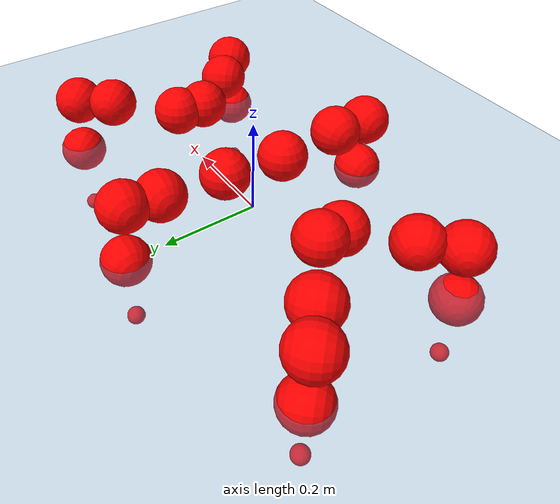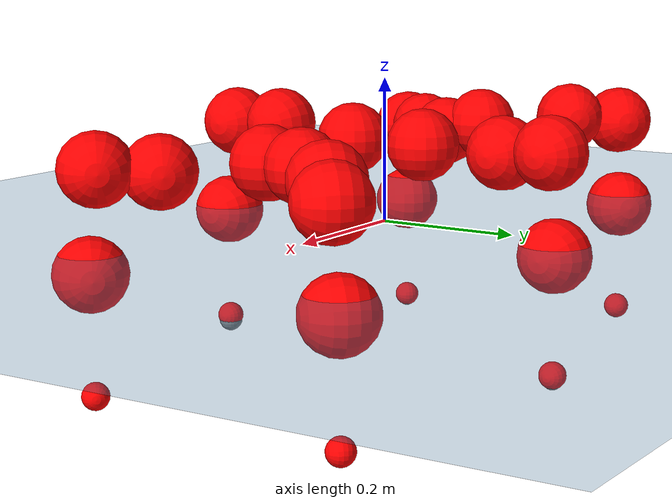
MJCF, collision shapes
<mujoco model="Golem">
  <compiler angle="radian" assetdir="assets" balanceinertia="true" inertiafromgeom="false"/>

  <option timestep="0.005" density="1.2" viscosity="2e-05"/>

  <size nkey="1"/>

  <visual>
    <quality shadowsize="8192"/>
    <map shadowclip="0.5"/>
  </visual>

  <default>
    <default class="/">
      <joint armature="0.01" damping="0.01" frictionloss="0.01"/>
      <geom contype="0" conaffinity="0" group="1" solref="-1000 -80"/>
      <site size="0.01 0.005 0.005" group="5"/>
      <general forcelimited="true" biastype="affine" gainprm="25" biasprm="0 -25 -0.5"/>
      <default class="visual">
        <geom type="mesh" group="2"/>
      </default>
      <default class="collision">
        <geom group="3"/>
      </default>
      <default class="foot">
        <geom size="0.01 0 0" condim="6" group="4" priority="1" solimp="0.015 1 0.01"/>
      </default>
      <default class="reward_collision_sphere">
        <geom group="5" rgba="1 0 0 1"/>
      </default>
    </default>
  </default>

  <asset>
    <texture type="skybox" colorspace="auto" name="//unnamed_texture_0" builtin="gradient" rgb1="0.95 0.95 0.95" rgb2="0.95 0.95 0.95" width="100" height="600"/>
    <texture type="2d" colorspace="auto" name="texplane" builtin="checker" rgb1="0.345 0.575 0.748" rgb2="0.345 0.575 0.748" markrgb="1 1 1" width="512" height="512"/>
    <material name="MatPlane" class="/" texture="texplane" texuniform="true" texrepeat="2 2" specular="0.9"/>
    <mesh name="body" class="/" file="body.stl" scale="0.001 0.001 0.001"/>
    <mesh name="coxa" class="/" file="coxa.stl" scale="0.001 0.001 0.001"/>
    <mesh name="femur" class="/" file="femur.stl" scale="0.001 0.001 0.001"/>
    <mesh name="tibia" class="/" file="tibia.stl" scale="0.001 0.001 0.001"/>
    <mesh name="tarsus" class="/" file="tarsus.stl" scale="0.001 0.001 0.001"/>
  </asset>

  <worldbody>
    <geom name="floor" class="/" size="100 100 0.125" type="plane" group="0" material="MatPlane"/>
    <light name="toplight_shadow" class="/" pos="0 0 5" dir="0.0990148 0.0990148 -0.990148" type="directional" ambient="0.04 0.04 0.04" diffuse="0.55 0.55 0.55" specular="0.12 0.12 0.12"/>
    <light name="toplight_fill" class="/" pos="0 0 5" dir="0.0990148 0.0990148 -0.990148" type="directional" castshadow="false" ambient="0.04 0.04 0.04" diffuse="0.3 0.3 0.3" specular="0.08 0.08 0.08"/>
    <body name="trunk" pos="-0.000886742 0.000321509 0.0107144" quat="0.999997 0.000843133 0.00208311 -0.00101181">
      <inertial pos="0.00102917 -0.0086127 0.00887279" quat="0.999775 0.0204 -0.00550761 0.00200502" mass="6.27032" diaginertia="0.0665747 0.00217206 0.0618368"/>
      <joint name="//unnamed_joint_0" type="free"/>
      <geom name="//unnamed_geom_1" class="/" pos="0 0 0.09514" quat="1 0 0 0" type="mesh" rgba="0.9 0.9 0.9 1" mesh="body"/>
      <site name="imu" class="/" pos="0.218301 -0.000297642 0.101904" size="0.0124428"/>
      <camera name="track" class="/" pos="0 -1.49146 0" quat="0.707107 0.707107 0 0" mode="trackcom"/>
      <camera name="ego_camera" class="/" pos="0.19507 0 0.148656" quat="-0.5 -0.5 0.5 0.5"/>
      <body name="coxa_RR" pos="-0.256691 -0.0654077 0.0893833" quat="0.388204 -0.000679599 0.0015712 -0.921572">
        <inertial pos="0.0118971 0.00651778 0.000507284" quat="0.998868 -0.0437975 -0.0171711 0.00705391" mass="0.358172" diaginertia="0.0757363 0.00227331 0.081951"/>
        <joint name="coxa_joint_RR" class="/" pos="0 0 0" axis="0.000866936 0.000703829 -0.999999" stiffness="0.00346801" range="-3.04071 3.12076" armature="0.0140344" damping="0" frictionloss="0.00649366"/>
        <geom name="//unnamed_geom_2" class="/" type="mesh" rgba="0.2 0.2 0.2 1" mesh="coxa"/>
        <geom name="//unnamed_geom_3" class="reward_collision_sphere" size="0.049771" pos="-0.0450161 0 0"/>
        <body name="femur_RR" pos="0.0853803 -0.000828394 -0.00723835" quat="0.499946 -0.499972 0.500289 0.499793">
          <inertial pos="-0.00107098 0.00400697 -0.0105914" quat="1 -0.00069734 -0.000151418 0.000118948" mass="0.393191" diaginertia="0.0785305 0.00233968 0.0840526"/>
          <joint name="femur_joint_RR" class="/" pos="0 0 0" axis="0.0408792 0.0249926 -0.998851" stiffness="0.00918664" range="-3.19099 3.10724" armature="0.0154182" damping="0.0298493" frictionloss="0.0142335"/>
          <geom name="//unnamed_geom_4" class="/" type="mesh" rgba="0.9 0.9 0.9 1" mesh="femur"/>
          <geom name="//unnamed_geom_5" class="reward_collision_sphere" size="0.049771"/>
          <body name="tibia_RR" pos="0.00543869 -0.0813019 0.00664867" quat="-6.25927e-05 1 1.32593e-05 3.63454e-05">
            <inertial pos="0.00468327 -0.00969571 0.0106737" quat="0.998817 0.00619254 0.0481062 -0.00339858" mass="0.407191" diaginertia="0.0904245 0.00250344 0.0763141"/>
            <joint name="tibia_joint_RR" class="/" pos="0 0 0" axis="9.95734e-05 -0.000173549 1" stiffness="0.00400138" range="-3.13715 3.29317" armature="0.0115931" damping="0" frictionloss="0.0123705"/>
            <geom name="//unnamed_geom_6" class="/" type="mesh" rgba="0.2 0.2 0.2 1" mesh="tibia"/>
            <geom name="//unnamed_geom_7" class="reward_collision_sphere" size="0.049771"/>
            <body name="tarsus_RR" pos="0.128333 0.0101326 1.52899e-05" quat="0.999987 0.00100399 0.000915746 0.00490294">
              <inertial pos="0.0867794 0.0116167 -0.00388881" quat="0.496941 0.505056 0.497352 0.500608" mass="0.402942" diaginertia="0.0749841 0.00189374 0.0682125"/>
              <joint name="tarsus_joint_RR" class="/" pos="0 0 0" axis="0.00781228 -0.0114806 0.999904" stiffness="0.0139135" range="-3.12687 3.12796" armature="0.0137934" damping="0.044002" frictionloss="0.0128404"/>
              <geom name="//unnamed_geom_8" class="/" type="mesh" rgba="0.9 0.9 0.9 1" mesh="tarsus"/>
              <geom name="foot_1" class="foot" size="0.0127677" pos="0.16806 0 0" quat="0 -0.707107 0 0.707107"/>
              <geom name="//unnamed_geom_10" class="reward_collision_sphere" size="0.049771"/>
              <geom name="//unnamed_geom_11" class="reward_collision_sphere" size="0.0186641" pos="0.161308 0 0"/>
              <site name="foot_1" class="foot" pos="0.16806 0 0" quat="0 -0.707107 0 0.707107" size="0.0124428"/>
            </body>
          </body>
        </body>
      </body>
      <body name="coxa_RM" pos="-0.011684 -0.106007 0.100893" quat="0.707023 -0.00100753 -0.00158859 -0.707188">
        <inertial pos="0.000773172 0.00642549 0.0125931" quat="0.999914 0.0110064 0.00681876 -0.00216465" mass="0.415293" diaginertia="0.0922266 0.00284766 0.075984"/>
        <joint name="coxa_joint_RM" class="/" pos="0 0 0" axis="0.00500665 0.000204075 -0.999987" range="-3.12872 3.14954" armature="0.0156836" damping="0" frictionloss="0.00832066"/>
        <geom name="//unnamed_geom_12" class="/" type="mesh" rgba="0.2 0.2 0.2 1" mesh="coxa"/>
        <geom name="//unnamed_geom_13" class="reward_collision_sphere" size="0.049771" pos="-0.0450161 0 0"/>
        <body name="femur_RM" pos="0.081661 -0.00320951 0.0128573" quat="0.499968 -0.502438 0.495023 0.502534">
          <inertial pos="0.00155219 0.00650429 0.00143322" quat="0.998451 -0.0544043 0.0111721 -0.00332714" mass="0.371024" diaginertia="0.0662558 0.00242872 0.0711531"/>
          <joint name="femur_joint_RM" class="/" pos="0 0 0" axis="-0.00990644 0.0121133 -0.999878" stiffness="0.00100123" range="-2.95697 2.95513" armature="0.00477617" damping="0" frictionloss="0.0116744"/>
          <geom name="//unnamed_geom_14" class="/" type="mesh" rgba="0.9 0.9 0.9 1" mesh="femur"/>
          <geom name="//unnamed_geom_15" class="reward_collision_sphere" size="0.049771"/>
          <body name="tibia_RM" pos="0.00337695 -0.0774558 -0.000272042" quat="0.000244602 1 0.000253332 0.000727138">
            <inertial pos="0.003246 0.00171012 0.0102969" quat="0.999014 0.00399457 0.0421436 0.0134026" mass="0.484857" diaginertia="0.0808816 0.00256571 0.0705791"/>
            <joint name="tibia_joint_RM" class="/" pos="0 0 0" axis="0.00431134 -0.00246123 0.999988" range="-2.96244 3.32398" armature="0.0183841" damping="0.0340712" frictionloss="0.0144743"/>
            <geom name="//unnamed_geom_16" class="/" type="mesh" rgba="0.2 0.2 0.2 1" mesh="tibia"/>
            <geom name="//unnamed_geom_17" class="reward_collision_sphere" size="0.049771"/>
            <body name="tarsus_RM" pos="0.130878 0.00889612 -0.0116367" quat="0.999998 -0.00131877 0.00114113 -0.00121574">
              <inertial pos="0.0945722 0.0011722 0.00455735" quat="0.517713 0.506667 0.508022 0.46602" mass="0.383553" diaginertia="0.0768605 0.00230419 0.0735009"/>
              <joint name="tarsus_joint_RM" class="/" pos="0 0 0" axis="0.00708333 0.00221455 0.999972" stiffness="0.0251853" range="-3.12523 2.88107" armature="0.0120403" damping="0.0611818" frictionloss="0.0131065"/>
              <geom name="//unnamed_geom_18" class="/" type="mesh" rgba="0.9 0.9 0.9 1" mesh="tarsus"/>
              <geom name="foot_2" class="foot" size="0.0170324" pos="0.16806 0 0" quat="0 -0.707107 0 0.707107"/>
              <geom name="//unnamed_geom_20" class="reward_collision_sphere" size="0.049771"/>
              <geom name="//unnamed_geom_21" class="reward_collision_sphere" size="0.0186641" pos="0.161308 0 0"/>
              <site name="foot_2" class="foot" pos="0.16806 0 0" quat="0 -0.707107 0 0.707107" size="0.0124428"/>
            </body>
          </body>
        </body>
      </body>
      <body name="coxa_RF" pos="0.268816 -0.0593911 0.100069" quat="0.92487 -0.0043529 -5.78192e-05 -0.380259">
        <inertial pos="-0.0104223 0.0101076 0.00111023" quat="0.999967 0.0014761 0.00332305 0.00729191" mass="0.394452" diaginertia="0.068149 0.00233108 0.0747897"/>
        <joint name="coxa_joint_RF" class="/" pos="0 0 0" axis="0.0385007 0.0288521 -0.998842" stiffness="0.000584158" range="-3.13734 3.14712" armature="0.0114644" damping="0.0398426" frictionloss="0.0148923"/>
        <geom name="//unnamed_geom_22" class="/" type="mesh" rgba="0.2 0.2 0.2 1" mesh="coxa"/>
        <geom name="//unnamed_geom_23" class="reward_collision_sphere" size="0.049771" pos="-0.0450161 0 0"/>
        <body name="femur_RF" pos="0.0909625 -0.0129183 -0.00920024" quat="0.500637 -0.499042 0.50466 0.495619">
          <inertial pos="-0.00042326 -0.000592067 0.0045491" quat="0.999549 0.027571 0.00858683 0.0082408" mass="0.405559" diaginertia="0.0806161 0.00244019 0.0760752"/>
          <joint name="femur_joint_RF" class="/" pos="0 0 0" axis="-0.0136348 0.00274566 -0.999903" stiffness="0.0368884" range="-3.24322 3.02269" armature="0.0120902" damping="0" frictionloss="0.0115967"/>
          <geom name="//unnamed_geom_24" class="/" type="mesh" rgba="0.9 0.9 0.9 1" mesh="femur"/>
          <geom name="//unnamed_geom_25" class="reward_collision_sphere" size="0.049771"/>
          <body name="tibia_RF" pos="-0.0065002 -0.0806919 0.00426851" quat="0.000426934 1 -0.000168867 -0.000313536">
            <inertial pos="-0.0014489 0.00856915 0.00139129" quat="0.999775 0.0192659 0.00162373 0.00870495" mass="0.420141" diaginertia="0.0863886 0.00262258 0.0728174"/>
            <joint name="tibia_joint_RF" class="/" pos="0 0 0" axis="-0.00194226 -0.00700352 0.999974" stiffness="0.0425039" range="-3.12532 3.32059" armature="0.0120639" damping="0.0751603" frictionloss="0.0126477"/>
            <geom name="//unnamed_geom_26" class="/" type="mesh" rgba="0.2 0.2 0.2 1" mesh="tibia"/>
            <geom name="//unnamed_geom_27" class="reward_collision_sphere" size="0.049771"/>
            <body name="tarsus_RF" pos="0.134575 0.0101925 -0.00113876" quat="0.999993 -0.00234363 0.000134898 -0.00288815">
              <inertial pos="0.0886482 0.000847629 -0.00217971" quat="0.499342 0.500669 0.500725 0.499262" mass="0.395147" diaginertia="0.0729487 0.00203556 0.074645"/>
              <joint name="tarsus_joint_RF" class="/" pos="0 0 0" axis="0.00184392 0.00333894 0.999993" range="-3.17457 3.16478" armature="0.0117719" damping="0.0112512" frictionloss="0.0126261"/>
              <geom name="//unnamed_geom_28" class="/" type="mesh" rgba="0.9 0.9 0.9 1" mesh="tarsus"/>
              <geom name="foot_3" class="foot" size="0.0118351" pos="0.16806 0 0" quat="0 -0.707107 0 0.707107"/>
              <geom name="//unnamed_geom_30" class="reward_collision_sphere" size="0.049771"/>
              <geom name="//unnamed_geom_31" class="reward_collision_sphere" size="0.0186641" pos="0.161308 0 0"/>
              <site name="foot_3" class="foot" pos="0.16806 0 0" quat="0 -0.707107 0 0.707107" size="0.0124428"/>
            </body>
          </body>
        </body>
      </body>
      <body name="coxa_LR" pos="-0.266289 0.0536354 0.104173" quat="0.382727 0.000172462 -0.000213493 0.923861">
        <inertial pos="-0.00109154 0.00354834 0.00810913" quat="0.999285 0.0365505 0.00962354 -0.000458179" mass="0.464622" diaginertia="0.0868631 0.00236234 0.0835504"/>
        <joint name="coxa_joint_LR" class="/" pos="0 0 0" axis="0.0439821 -0.00590055 -0.999015" range="-3.16748 3.14922" armature="0.00995063" damping="0.0123299" frictionloss="0.00727024"/>
        <geom name="//unnamed_geom_32" class="/" type="mesh" rgba="0.2 0.2 0.2 1" mesh="coxa"/>
        <geom name="//unnamed_geom_33" class="reward_collision_sphere" size="0.049771" pos="-0.0450161 0 0"/>
        <body name="femur_LR" pos="0.0975301 0.0115763 0.00302719" quat="0.500571 -0.497459 0.502527 0.499429">
          <inertial pos="-0.000972908 0.00467516 0.0119108" quat="0.999638 -0.0193967 0.000922083 0.0186277" mass="0.404638" diaginertia="0.0857935 0.00260115 0.0802947"/>
          <joint name="femur_joint_LR" class="/" pos="0 0 0" axis="0.0112441 -0.0592249 0.998181" range="-3.10811 3.14361" armature="0.00839229" damping="0" frictionloss="0.0125574"/>
          <geom name="//unnamed_geom_34" class="/" type="mesh" rgba="0.9 0.9 0.9 1" mesh="femur"/>
          <geom name="//unnamed_geom_35" class="reward_collision_sphere" size="0.049771"/>
          <body name="tibia_LR" pos="0.00836424 -0.0806258 0.00701763" quat="1.75047e-05 1 1.27279e-05 0.000216219">
            <inertial pos="1.5595e-05 -0.00973841 -0.00123018" quat="0.999967 -0.00642342 0.0027533 0.00410476" mass="0.357077" diaginertia="0.0795479 0.00208877 0.0592486"/>
            <joint name="tibia_joint_LR" class="/" pos="0 0 0" axis="0.057564 -0.0289386 -0.997922" range="-3.31661 3.39889" armature="0.00467066" damping="0.0444482" frictionloss="0.00795995"/>
            <geom name="//unnamed_geom_36" class="/" type="mesh" rgba="0.2 0.2 0.2 1" mesh="tibia"/>
            <geom name="//unnamed_geom_37" class="reward_collision_sphere" size="0.049771"/>
            <body name="tarsus_LR" pos="0.130283 0.00390902 0.00358362" quat="0.999999 0.000230172 0.000995032 0.000131596">
              <inertial pos="0.0781531 0.000560702 0.0130133" quat="0.500685 0.500994 0.500223 0.498093" mass="0.381881" diaginertia="0.0679136 0.00229672 0.070819"/>
              <joint name="tarsus_joint_LR" class="/" pos="0 0 0" axis="0.0127782 -0.0118452 -0.999848" stiffness="0.00552039" range="-3.26802 3.25742" armature="0.017647" damping="0" frictionloss="0.0122727"/>
              <geom name="//unnamed_geom_38" class="/" type="mesh" rgba="0.9 0.9 0.9 1" mesh="tarsus"/>
              <geom name="foot_4" class="foot" size="0.0124681" pos="0.16806 0 0" quat="0.707107 0 -0.707107 0"/>
              <geom name="//unnamed_geom_40" class="reward_collision_sphere" size="0.049771"/>
              <geom name="//unnamed_geom_41" class="reward_collision_sphere" size="0.0186641" pos="0.161308 0 0"/>
              <site name="foot_4" class="foot" pos="0.16806 0 0" quat="0.707107 0 -0.707107 0" size="0.0124428"/>
            </body>
          </body>
        </body>
      </body>
      <body name="coxa_LM" pos="0.00132575 0.106699 0.101109" quat="0.706735 0.000793527 2.99102e-05 0.707478">
        <inertial pos="-0.000698636 0.0104068 -0.012276" quat="0.999688 -0.00790981 -0.011215 0.0208671" mass="0.361622" diaginertia="0.080858 0.002348 0.0751026"/>
        <joint name="coxa_joint_LM" class="/" pos="0 0 0" axis="0.0323605 -0.0304843 -0.999011" stiffness="0.00698363" range="-3.15443 3.20615" armature="0.0200938" damping="0" frictionloss="0.0124376"/>
        <geom name="//unnamed_geom_42" class="/" type="mesh" rgba="0.2 0.2 0.2 1" mesh="coxa"/>
        <geom name="//unnamed_geom_43" class="reward_collision_sphere" size="0.049771" pos="-0.0450161 0 0"/>
        <body name="femur_LM" pos="0.0852984 -0.0111892 -0.000304273" quat="0.500416 -0.49982 0.500021 0.499743">
          <inertial pos="0.0117047 -0.00638755 0.00670503" quat="0.999987 0.00275485 -0.00347104 -0.00238455" mass="0.413607" diaginertia="0.0894063 0.00242675 0.0804353"/>
          <joint name="femur_joint_LM" class="/" pos="0 0 0" axis="0.0109231 -0.0529796 0.998536" range="-3.12751 3.1238" armature="0.0129321" damping="0.0280237" frictionloss="0.00714574"/>
          <geom name="//unnamed_geom_44" class="/" type="mesh" rgba="0.9 0.9 0.9 1" mesh="femur"/>
          <geom name="//unnamed_geom_45" class="reward_collision_sphere" size="0.049771"/>
          <body name="tibia_LM" pos="-0.00550198 -0.0712937 -0.0033956" quat="3.69801e-05 0.999999 0.00126612 -0.000194779">
            <inertial pos="-0.00138863 0.00127855 -0.00780465" quat="0.99909 0.0239797 -0.0200176 0.0290512" mass="0.441816" diaginertia="0.0746267 0.00235647 0.0812513"/>
            <joint name="tibia_joint_LM" class="/" pos="0 0 0" axis="0.00884763 -0.00288886 -0.999957" range="-3.13586 2.94033" armature="0.0123372" damping="0.0306491" frictionloss="0.00964653"/>
            <geom name="//unnamed_geom_46" class="/" type="mesh" rgba="0.2 0.2 0.2 1" mesh="tibia"/>
            <geom name="//unnamed_geom_47" class="reward_collision_sphere" size="0.049771"/>
            <body name="tarsus_LM" pos="0.134074 0.0102334 0.00493473" quat="1 -0.000144809 -0.000226286 -7.81075e-05">
              <inertial pos="0.0788869 0.00345652 0.00317247" quat="0.500297 0.499917 0.499686 0.500101" mass="0.38465" diaginertia="0.073524 0.00223822 0.0647548"/>
              <joint name="tarsus_joint_LM" class="/" pos="0 0 0" axis="-0.00540598 0.0141233 -0.999886" stiffness="0.0347777" range="-3.16014 3.11448" armature="0.0133476" damping="0.0490103" frictionloss="0.0138449"/>
              <geom name="//unnamed_geom_48" class="/" type="mesh" rgba="0.9 0.9 0.9 1" mesh="tarsus"/>
              <geom name="foot_5" class="foot" size="0.0131499" pos="0.16806 0 0" quat="0.707107 0 -0.707107 0"/>
              <geom name="//unnamed_geom_50" class="reward_collision_sphere" size="0.049771"/>
              <geom name="//unnamed_geom_51" class="reward_collision_sphere" size="0.0186641" pos="0.161308 0 0"/>
              <site name="foot_5" class="foot" pos="0.16806 0 0" quat="0.707107 0 -0.707107 0" size="0.0124428"/>
            </body>
          </body>
        </body>
      </body>
      <body name="coxa_LF" pos="0.274477 0.0618656 0.100308" quat="0.923898 -7.43166e-05 2.55839e-05 0.382638">
        <inertial pos="-0.00816578 -0.00139571 -0.00295884" quat="0.998535 -0.0201542 0.0442492 -0.0237548" mass="0.391899" diaginertia="0.064029 0.00225552 0.0726139"/>
        <joint name="coxa_joint_LF" class="/" pos="0 0 0" axis="0.00558451 0.0019034 -0.999983" range="-3.14435 3.33776" armature="0.0156" damping="0.0206329" frictionloss="0.0119853"/>
        <geom name="//unnamed_geom_52" class="/" type="mesh" rgba="0.2 0.2 0.2 1" mesh="coxa"/>
        <geom name="//unnamed_geom_53" class="reward_collision_sphere" size="0.049771" pos="-0.0450161 0 0"/>
        <body name="femur_LF" pos="0.0996813 0.00407194 0.0041019" quat="0.501061 -0.500481 0.499496 0.49896">
          <inertial pos="0.00899506 -0.00778261 -0.00210388" quat="0.999794 0.00581592 -0.00621942 0.018437" mass="0.399753" diaginertia="0.084857 0.00233416 0.0720651"/>
          <joint name="femur_joint_LF" class="/" pos="0 0 0" axis="0.0505557 0.0171592 0.998574" stiffness="0.0254491" range="-2.93584 3.15601" armature="0.0120444" damping="0.0408287" frictionloss="0.0122494"/>
          <geom name="//unnamed_geom_54" class="/" type="mesh" rgba="0.9 0.9 0.9 1" mesh="femur"/>
          <geom name="//unnamed_geom_55" class="reward_collision_sphere" size="0.049771"/>
          <body name="tibia_LF" pos="0.011164 -0.0839168 -0.0101303" quat="0.0026547 0.999993 -0.00270769 5.38988e-05">
            <inertial pos="0.00872003 0.000818262 0.000441324" quat="0.997944 -0.0603769 0.0163224 -0.0140218" mass="0.330164" diaginertia="0.0827672 0.0023083 0.0754302"/>
            <joint name="tibia_joint_LF" class="/" pos="0 0 0" axis="0.00313559 0.00482923 -0.999983" stiffness="0.0141469" range="-3.13904 3.04742" armature="0.0136449" damping="0.0478368" frictionloss="0.0129016"/>
            <geom name="//unnamed_geom_56" class="/" type="mesh" rgba="0.2 0.2 0.2 1" mesh="tibia"/>
            <geom name="//unnamed_geom_57" class="reward_collision_sphere" size="0.049771"/>
            <body name="tarsus_LF" pos="0.128348 0.00863403 -0.00533244" quat="1 0.000118098 -0.000111001 -0.000218528">
              <inertial pos="0.0960362 0.0013868 0.00603815" quat="0.503756 0.50381 0.492677 0.499674" mass="0.493796" diaginertia="0.0851932 0.00265172 0.0819616"/>
              <joint name="tarsus_joint_LF" class="/" pos="0 0 0" axis="-0.00802409 -0.0156458 -0.999845" stiffness="0.0295285" range="-3.09712 3.03183" armature="0.0157349" damping="0" frictionloss="0.0133217"/>
              <geom name="//unnamed_geom_58" class="/" type="mesh" rgba="0.9 0.9 0.9 1" mesh="tarsus"/>
              <geom name="foot_6" class="foot" size="0.00903448" pos="0.16806 0 0" quat="0.707107 0 -0.707107 0"/>
              <geom name="//unnamed_geom_60" class="reward_collision_sphere" size="0.049771"/>
              <geom name="//unnamed_geom_61" class="reward_collision_sphere" size="0.0186641" pos="0.161308 0 0"/>
              <site name="foot_6" class="foot" pos="0.16806 0 0" quat="0.707107 0 -0.707107 0" size="0.0124428"/>
            </body>
          </body>
        </body>
      </body>
    </body>
  </worldbody>

  <contact>
    <pair class="/" geom1="floor" geom2="foot_1" name="//unnamed_contact_0"/>
    <pair class="/" geom1="floor" geom2="foot_2" name="//unnamed_contact_1"/>
    <pair class="/" geom1="floor" geom2="foot_3" name="//unnamed_contact_2"/>
    <pair class="/" geom1="floor" geom2="foot_4" name="//unnamed_contact_3"/>
    <pair class="/" geom1="floor" geom2="foot_5" name="//unnamed_contact_4"/>
    <pair class="/" geom1="floor" geom2="foot_6" name="//unnamed_contact_5"/>
  </contact>

  <actuator>
    <general name="coxa_joint_RR" class="/" joint="coxa_joint_RR" forcerange="-8.79236 8.79236" gainprm="29.3759" biasprm="0 -29.3759 -0.554435"/>
    <general name="femur_joint_RR" class="/" joint="femur_joint_RR" forcerange="-6.82283 6.82283" gainprm="29.3759" biasprm="0 -29.3759 -0.554435"/>
    <general name="tibia_joint_RR" class="/" joint="tibia_joint_RR" forcerange="-12.3589 12.3589" gainprm="29.3759" biasprm="0 -29.3759 -0.554435"/>
    <general name="tarsus_joint_RR" class="/" joint="tarsus_joint_RR" forcerange="-7.75653 7.75653" gainprm="29.3759" biasprm="0 -29.3759 -0.554435"/>
    <general name="coxa_joint_RM" class="/" joint="coxa_joint_RM" forcerange="-4.67386 4.67386" gainprm="29.3759" biasprm="0 -29.3759 -0.554435"/>
    <general name="femur_joint_RM" class="/" joint="femur_joint_RM" forcerange="-8.72205 8.72205" gainprm="29.3759" biasprm="0 -29.3759 -0.554435"/>
    <general name="tibia_joint_RM" class="/" joint="tibia_joint_RM" forcerange="-7.67855 7.67855" gainprm="29.3759" biasprm="0 -29.3759 -0.554435"/>
    <general name="tarsus_joint_RM" class="/" joint="tarsus_joint_RM" forcerange="-12.3826 12.3826" gainprm="29.3759" biasprm="0 -29.3759 -0.554435"/>
    <general name="coxa_joint_RF" class="/" joint="coxa_joint_RF" forcerange="-6.04497 6.04497" gainprm="29.3759" biasprm="0 -29.3759 -0.554435"/>
    <general name="femur_joint_RF" class="/" joint="femur_joint_RF" forcerange="-9.08256 9.08256" gainprm="29.3759" biasprm="0 -29.3759 -0.554435"/>
    <general name="tibia_joint_RF" class="/" joint="tibia_joint_RF" forcerange="-8.56599 8.56599" gainprm="29.3759" biasprm="0 -29.3759 -0.554435"/>
    <general name="tarsus_joint_RF" class="/" joint="tarsus_joint_RF" forcerange="-9.15004 9.15004" gainprm="29.3759" biasprm="0 -29.3759 -0.554435"/>
    <general name="coxa_joint_LR" class="/" joint="coxa_joint_LR" forcerange="-5.44564 5.44564" gainprm="29.3759" biasprm="0 -29.3759 -0.554435"/>
    <general name="femur_joint_LR" class="/" joint="femur_joint_LR" forcerange="-9.22944 9.22944" gainprm="29.3759" biasprm="0 -29.3759 -0.554435"/>
    <general name="tibia_joint_LR" class="/" joint="tibia_joint_LR" forcerange="-6.38228 6.38228" gainprm="29.3759" biasprm="0 -29.3759 -0.554435"/>
    <general name="tarsus_joint_LR" class="/" joint="tarsus_joint_LR" forcerange="-5.22168 5.22168" gainprm="29.3759" biasprm="0 -29.3759 -0.554435"/>
    <general name="coxa_joint_LM" class="/" joint="coxa_joint_LM" forcerange="-12.2756 12.2756" gainprm="29.3759" biasprm="0 -29.3759 -0.554435"/>
    <general name="femur_joint_LM" class="/" joint="femur_joint_LM" forcerange="-8.11605 8.11605" gainprm="29.3759" biasprm="0 -29.3759 -0.554435"/>
    <general name="tibia_joint_LM" class="/" joint="tibia_joint_LM" forcerange="-5.58304 5.58304" gainprm="29.3759" biasprm="0 -29.3759 -0.554435"/>
    <general name="tarsus_joint_LM" class="/" joint="tarsus_joint_LM" forcerange="-4.79533 4.79533" gainprm="29.3759" biasprm="0 -29.3759 -0.554435"/>
    <general name="coxa_joint_LF" class="/" joint="coxa_joint_LF" forcerange="-11.705 11.705" gainprm="29.3759" biasprm="0 -29.3759 -0.554435"/>
    <general name="femur_joint_LF" class="/" joint="femur_joint_LF" forcerange="-11.6087 11.6087" gainprm="29.3759" biasprm="0 -29.3759 -0.554435"/>
    <general name="tibia_joint_LF" class="/" joint="tibia_joint_LF" forcerange="-10.1121 10.1121" gainprm="29.3759" biasprm="0 -29.3759 -0.554435"/>
    <general name="tarsus_joint_LF" class="/" joint="tarsus_joint_LF" forcerange="-10.7406 10.7406" gainprm="29.3759" biasprm="0 -29.3759 -0.554435"/>
  </actuator>

  <sensor>
    <gyro site="imu" name="imu_angular_velocity"/>
    <velocimeter site="imu" name="imu_linear_velocity"/>
    <framelinvel objtype="site" objname="foot_1" name="foot_1_global_linear_velocity"/>
    <framelinvel objtype="site" objname="foot_2" name="foot_2_global_linear_velocity"/>
    <framelinvel objtype="site" objname="foot_3" name="foot_3_global_linear_velocity"/>
    <framelinvel objtype="site" objname="foot_4" name="foot_4_global_linear_velocity"/>
    <framelinvel objtype="site" objname="foot_5" name="foot_5_global_linear_velocity"/>
    <framelinvel objtype="site" objname="foot_6" name="foot_6_global_linear_velocity"/>
  </sensor>

  <keyframe>
    <key name="home" qpos="0 0 0.1457 1 0 0 0 0 0 0 0 0 0 0 0 0 0 0 0 0 0 0 0 0 0 0 0 0 0 0 0"/>
  </keyframe>
</mujoco>
